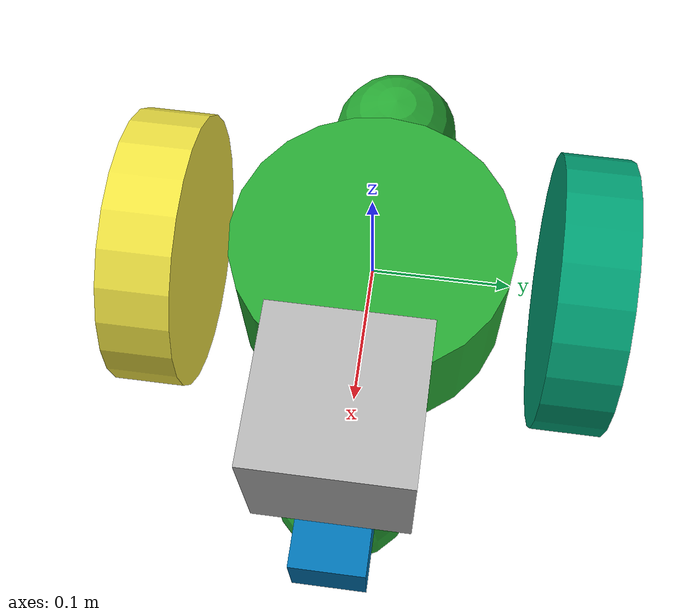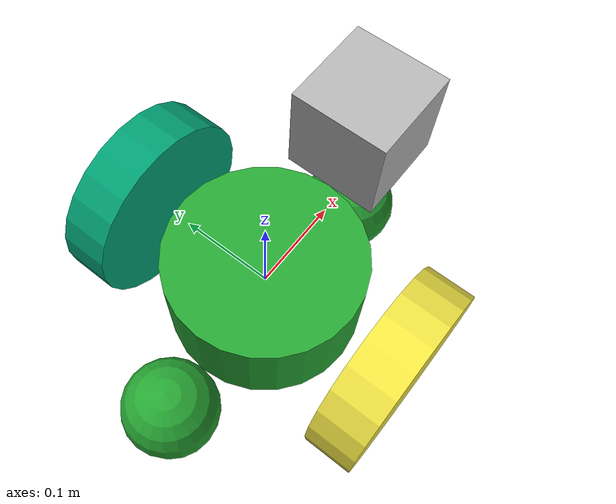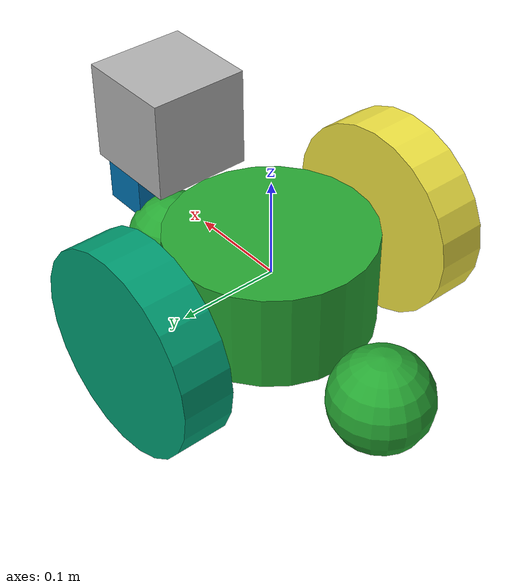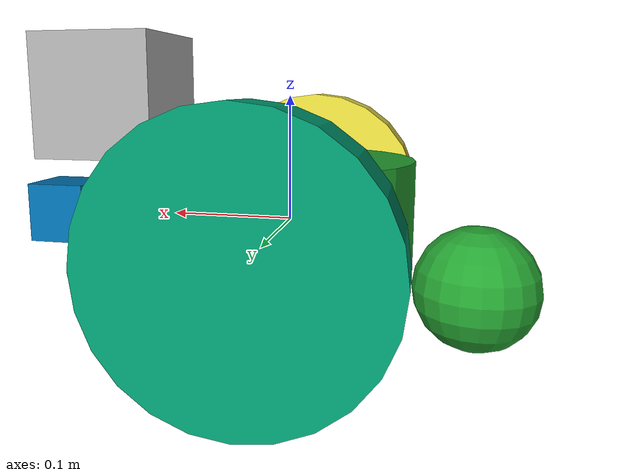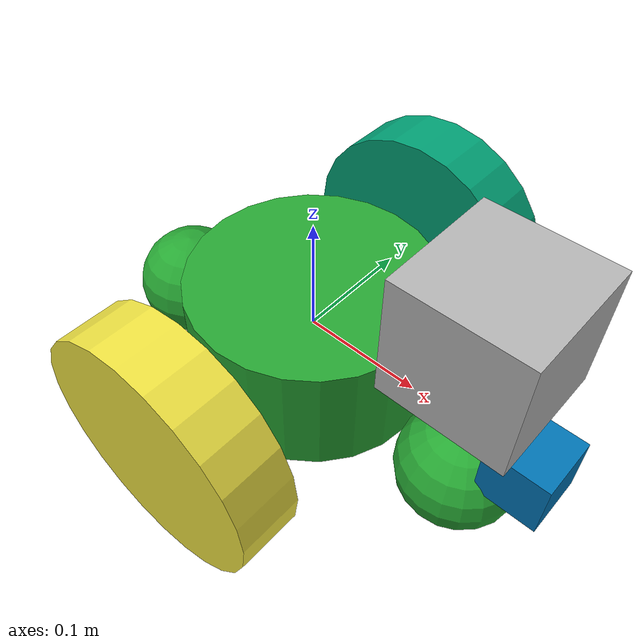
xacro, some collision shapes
<?xml version='1.0'?>

<robot name="slam_project" xmlns:xacro="http://www.ros.org/wiki/xacro">

  <xacro:include filename="$(find slam_project)/urdf/slam_project.gazebo" />

  <link name="base_footprint"></link>

  <joint name="base_footprint_joint" type="fixed">
    <origin xyz="0 0 0" rpy="0 0 0" />
    <parent link="base_footprint"/>
    <child link="chassis" />
  </joint>

  <link name='chassis'>
    <pose>0 0 0.1 0 0 0</pose>

    <inertial>
      <mass value="15.0"/>
      <origin xyz="0.0 0 0" rpy=" 0 0 0"/>
      <inertia
          ixx="0.1" ixy="0" ixz="0"
          iyy="0.1" iyz="0"
          izz="0.1"
      />
    </inertial>

    <collision name='collision'>
      <origin xyz="0 0 0" rpy=" 0 0 0"/>
      <geometry>
        <cylinder length="0.1" radius="0.1"/>
      </geometry>
    </collision>

    <visual name='chassis_visual'>
      <origin xyz="0 0 0" rpy=" 0 0 0"/>
      <geometry>
        <cylinder length="0.1" radius="0.1"/>
      </geometry>
    </visual>

    <collision name='back_caster_collision'>
      <origin xyz="-0.15 0 -0.05" rpy=" 0 0 0"/>
      <geometry>
        <sphere radius="0.05"/>
      </geometry>
      <surface>
        <friction>
          <ode>
            <mu>0</mu>
            <mu2>0</mu2>
            <slip1>1.0</slip1>
            <slip2>1.0</slip2>
          </ode>
        </friction>
      </surface>
    </collision>

    <visual name='back_caster_visual'>
      <origin xyz="-0.15 0 -0.05" rpy=" 0 0 0"/>
      <geometry>
        <sphere radius="0.05"/>
      </geometry>
    </visual>

    <collision name='front_caster_collision'>
      <origin xyz="0.15 0 -0.05" rpy=" 0 0 0"/>
      <geometry>
        <sphere radius="0.05"/>
      </geometry>
      <surface>
        <friction>
          <ode>
            <mu>0</mu>
            <mu2>0</mu2>
            <slip1>1.0</slip1>
            <slip2>1.0</slip2>
          </ode>
        </friction>
      </surface>
    </collision>

    <visual name='front_caster_visual'>
      <origin xyz="0.15 0 -0.05" rpy=" 0 0 0"/>
      <geometry>
        <sphere radius="0.05"/>
      </geometry>
    </visual>

  </link>

  <link name="left_wheel">
    <inertial>
      <mass value="5.0"/>
      <origin xyz="0.0 0 0" rpy=" 0 1.5707 1.5707"/>
      <inertia
          ixx="0.1" ixy="0" ixz="0"
          iyy="0.1" iyz="0"
          izz="0.1"
      />
    </inertial>
    <visual name='cylindrical'>
      <origin xyz="0 0 0" rpy=" 0 1.5707 1.5707"/>
      <geometry>
        <cylinder radius="0.1" length="0.05"/>
      </geometry>
    </visual>
    <collision name='collision'>
      <origin xyz="0 0 0" rpy=" 0 1.5707 1.5707"/>
      <geometry>
        <cylinder radius="0.1" length="0.05"/>
      </geometry>
    </collision>
  </link>

  <link name="right_wheel">
    <inertial>
      <mass value="5.0"/>
      <origin xyz="0.0 0 0" rpy=" 0 1.5707 1.5707"/>
      <inertia
          ixx="0.1" ixy="0" ixz="0"
          iyy="0.1" iyz="0"
          izz="0.1"
      />
    </inertial>
    <visual name='cylindrical'>
      <origin xyz="0 0 0" rpy=" 0 1.5707 1.5707"/>
      <geometry>
        <cylinder radius="0.1" length="0.05"/>
      </geometry>
    </visual>
    <collision name='collision'>
      <origin xyz="0 0 0" rpy=" 0 1.5707 1.5707"/>
      <geometry>
        <cylinder radius="0.1" length="0.05"/>
      </geometry>
    </collision>
  </link>

  <joint type="continuous" name="left_wheel_hinge">
     <origin xyz="0 0.15 0" rpy="0 0 0"/>
     <child link="left_wheel"/>
     <parent link="chassis"/>
     <axis xyz="0 1 0" rpy="0 0 0"/>
     <limit effort="10000" velocity="1000"/>
     <joint_properties damping="1.0" friction="1.0"/>
  </joint>

  <joint type="continuous" name="right_wheel_hinge">
     <origin xyz="0 -0.15 0" rpy="0 0 0"/>
     <child link="right_wheel"/>
     <parent link="chassis"/>
     <axis xyz="0 1 0" rpy="0 0 0"/>
     <limit effort="10000" velocity="1000"/>
     <joint_properties damping="1.0" friction="1.0"/>
  </joint>

  <link name="camera_link">
    <inertial>
      <mass value="0.1"/>
      <origin xyz="0.0 0 0" rpy=" 0 0 0"/>
      <inertia
          ixx="1e-6" ixy="0" ixz="0"
          iyy="1e-6" iyz="0"
          izz="1e-6"
      />
    </inertial>
    <visual name='box'>
      <origin xyz="0 0 0" rpy=" 0 0 0"/>
      <geometry>
        <box size="0.05 0.05 0.05"/>
      </geometry>
    </visual>
    <collision name='collision'>
      <origin xyz="0 0 0" rpy=" 0 0 0"/>
        <geometry>
          <box size="0.05 0.05 0.05"/>
        </geometry>
    </collision>
  </link>

  <joint type="fixed" name="camera_joint">
     <origin xyz="0.2 0 0.0" rpy="0 0 0"/>
     <child link="camera_link"/>
     <parent link="chassis"/>
  </joint>

  <link name="camera_rgbd_frame">
   <inertial>
     <mass value="0.001" />
     <origin xyz="0 0 0" />
     <inertia
          ixx="1e-6" ixy="0" ixz="0"
          iyy="1e-6" iyz="0"
          izz="1e-6"
     />
   </inertial>
  </link>

  <joint type="fixed" name="camera_rgbd_joint" >
    <origin xyz="0.001 0 0.001" rpy="0 0 0"/>
    <child link="camera_rgbd_frame" />
    <parent link="camera_link"/>
  </joint>

  <link name="camera_optical_link">
   <inertial>
     <mass value="0.001" />
     <origin xyz="0 0 0" />
     <inertia
          ixx="1e-6" ixy="0" ixz="0"
          iyy="1e-6" iyz="0"
          izz="1e-6"
     />
   </inertial>
  </link>

  <joint type="fixed" name="camera_optical_joint" >
    <origin xyz="0 0 0" rpy="-1.57 0 -1.57"/>
    <child link="camera_optical_link" />
    <parent link="camera_rgbd_frame"/>
  </joint>

  <link name="hokuyo">
    <inertial>
      <mass value="0.1"/>
      <origin xyz="0.0 0 0" rpy=" 0 0 0"/>
      <inertia
          ixx="1e-6" ixy="0" ixz="0"
          iyy="1e-6" iyz="0"
          izz="1e-6"
      />
    </inertial>
    <visual name='mesh'>
      <origin xyz="0 0 0" rpy=" 0 0 0"/>
      <geometry>
        <mesh filename="package://slam_project/meshes/hokuyo.dae"/>
      </geometry>
    </visual>
    <collision name='collision'>
       <origin xyz="0 0 0" rpy=" 0 0 0"/>
         <geometry>
           <box size="0.1 0.1 0.1"/>
         </geometry>
    </collision>
  </link>

  <joint type="fixed" name="hokuyo_joint">
    <origin xyz="0.15 0 0.1" rpy="0 0 0"/>
    <child link="hokuyo"/>
    <parent link="chassis"/>
  </joint>

</robot>
